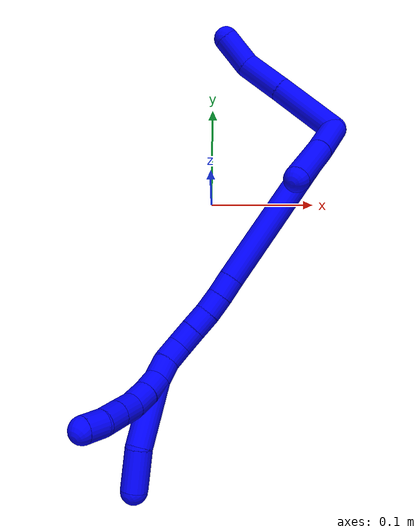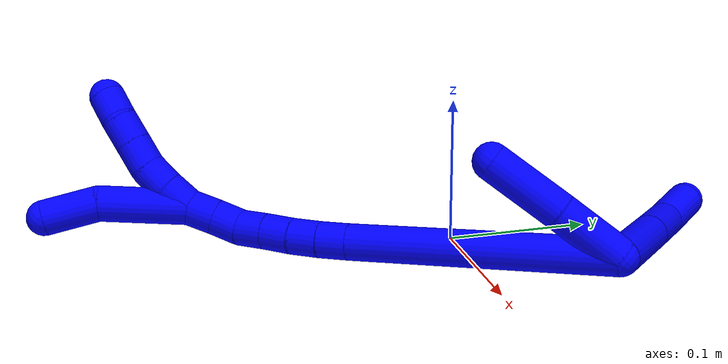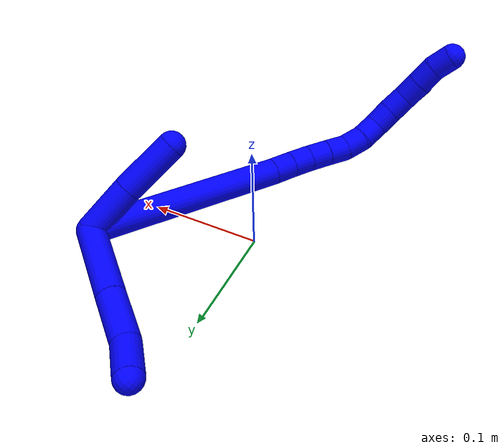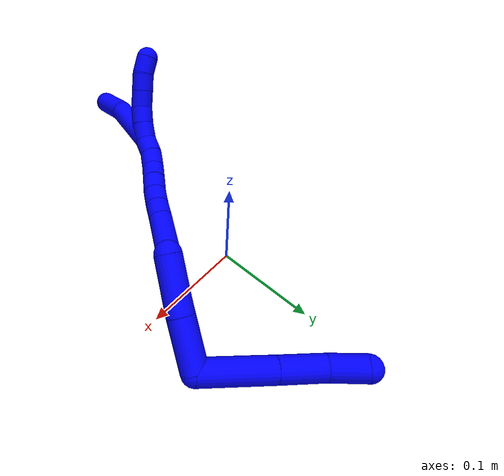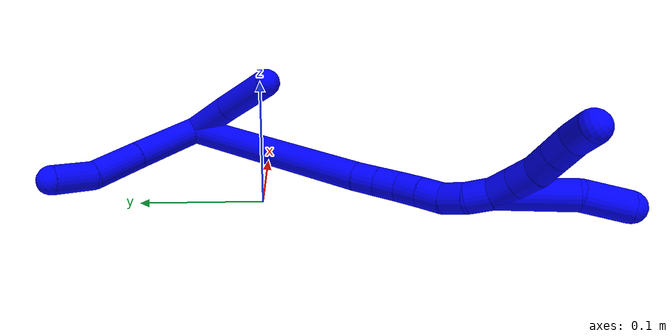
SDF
<sdf version="1.7">
 <world name="default">
  <model name="1">
   <static>0</static>
   <link name="1">
    <collision name="collision-cylinder-e_1_2_8">
     <pose>-0.017512 0.02956 -0.005868 -1.76675 -0.526383 0.634215</pose>
     <geometry><cylinder><radius>0.0125</radius><length>0.069711</length></cylinder></geometry>
     <surface>
      <friction><ode><mu>1.16</mu><mu2>1.16</mu2><slip1>0</slip1><slip2>0</slip2></ode></friction>
      <contact><ode><kp>1e+06</kp><kd>1</kd><max_vel>0</max_vel><min_depth>0.001</min_depth></ode></contact>
     </surface>
    </collision>
    <visual name="visual-cylinder-e_1_2_8">
     <pose>-0.017512 0.02956 -0.005868 -1.76675 -0.526383 0.634215</pose>
     <geometry><cylinder><radius>0.0125</radius><length>0.069711</length></cylinder></geometry>
     <material><ambient>0 0 1 1</ambient></material>
    </visual>
    <collision name="collision-cylinder-e_2_8_9">
     <pose>-0.04655 0.078062 -0.015384 -1.76111 -0.538609 0.64516</pose>
     <geometry><cylinder><radius>0.0125</radius><length>0.044943</length></cylinder></geometry>
     <surface>
      <friction><ode><mu>1.16</mu><mu2>1.16</mu2><slip1>0</slip1><slip2>0</slip2></ode></friction>
      <contact><ode><kp>1e+06</kp><kd>1</kd><max_vel>0</max_vel><min_depth>0.001</min_depth></ode></contact>
     </surface>
    </collision>
    <visual name="visual-cylinder-e_2_8_9">
     <pose>-0.04655 0.078062 -0.015384 -1.76111 -0.538609 0.64516</pose>
     <geometry><cylinder><radius>0.0125</radius><length>0.044943</length></cylinder></geometry>
     <material><ambient>0 0 1 1</ambient></material>
    </visual>
    <collision name="collision-cylinder-e_3_9_6">
     <pose>-0.062065 0.114009 -0.02173 -1.72806 -0.227647 0.266167</pose>
     <geometry><cylinder><radius>0.0125</radius><length>0.035346</length></cylinder></geometry>
     <surface>
      <friction><ode><mu>1.16</mu><mu2>1.16</mu2><slip1>0</slip1><slip2>0</slip2></ode></friction>
      <contact><ode><kp>1e+06</kp><kd>1</kd><max_vel>0</max_vel><min_depth>0.001</min_depth></ode></contact>
     </surface>
    </collision>
    <visual name="visual-cylinder-e_3_9_6">
     <pose>-0.062065 0.114009 -0.02173 -1.72806 -0.227647 0.266167</pose>
     <geometry><cylinder><radius>0.0125</radius><length>0.035346</length></cylinder></geometry>
     <material><ambient>0 0 1 1</ambient></material>
    </visual>
    <collision name="collision-cylinder-e_1_2_10">
     <pose>0.001124 -0.001834 0.023515 0.077856 0.047612 0.001855</pose>
     <geometry><cylinder><radius>0.0125</radius><length>0.047226</length></cylinder></geometry>
     <surface>
      <friction><ode><mu>1.16</mu><mu2>1.16</mu2><slip1>0</slip1><slip2>0</slip2></ode></friction>
      <contact><ode><kp>1e+06</kp><kd>1</kd><max_vel>0</max_vel><min_depth>0.001</min_depth></ode></contact>
     </surface>
    </collision>
    <visual name="visual-cylinder-e_1_2_10">
     <pose>0.001124 -0.001834 0.023515 0.077856 0.047612 0.001855</pose>
     <geometry><cylinder><radius>0.0125</radius><length>0.047226</length></cylinder></geometry>
     <material><ambient>0 0 1 1</ambient></material>
    </visual>
    <collision name="collision-cylinder-e_2_10_5">
     <pose>0.002043 -0.004999 0.073382 0.050445 -0.007772 -0.000196</pose>
     <geometry><cylinder><radius>0.0125</radius><length>0.052774</length></cylinder></geometry>
     <surface>
      <friction><ode><mu>1.16</mu><mu2>1.16</mu2><slip1>0</slip1><slip2>0</slip2></ode></friction>
      <contact><ode><kp>1e+06</kp><kd>1</kd><max_vel>0</max_vel><min_depth>0.001</min_depth></ode></contact>
     </surface>
    </collision>
    <visual name="visual-cylinder-e_2_10_5">
     <pose>0.002043 -0.004999 0.073382 0.050445 -0.007772 -0.000196</pose>
     <geometry><cylinder><radius>0.0125</radius><length>0.052774</length></cylinder></geometry>
     <material><ambient>0 0 1 1</ambient></material>
    </visual>
    <collision name="collision-cylinder-e_1_2_11">
     <pose>-0.048352 -0.028734 0.069934 0.38984 -0.568972 -0.115334</pose>
     <geometry><cylinder><radius>0.0125</radius><length>0.179492</length></cylinder></geometry>
     <surface>
      <friction><ode><mu>1.16</mu><mu2>1.16</mu2><slip1>0</slip1><slip2>0</slip2></ode></friction>
      <contact><ode><kp>1e+06</kp><kd>1</kd><max_vel>0</max_vel><min_depth>0.001</min_depth></ode></contact>
     </surface>
    </collision>
    <visual name="visual-cylinder-e_1_2_11">
     <pose>-0.048352 -0.028734 0.069934 0.38984 -0.568972 -0.115334</pose>
     <geometry><cylinder><radius>0.0125</radius><length>0.179492</length></cylinder></geometry>
     <material><ambient>0 0 1 1</ambient></material>
    </visual>
    <collision name="collision-cylinder-e_2_11_12">
     <pose>-0.101831 -0.06085 0.148062 0.391525 -0.524341 -0.106327</pose>
     <geometry><cylinder><radius>0.0125</radius><length>0.020481</length></cylinder></geometry>
     <surface>
      <friction><ode><mu>1.16</mu><mu2>1.16</mu2><slip1>0</slip1><slip2>0</slip2></ode></friction>
      <contact><ode><kp>1e+06</kp><kd>1</kd><max_vel>0</max_vel><min_depth>0.001</min_depth></ode></contact>
     </surface>
    </collision>
    <visual name="visual-cylinder-e_2_11_12">
     <pose>-0.101831 -0.06085 0.148062 0.391525 -0.524341 -0.106327</pose>
     <geometry><cylinder><radius>0.0125</radius><length>0.020481</length></cylinder></geometry>
     <material><ambient>0 0 1 1</ambient></material>
    </visual>
    <collision name="collision-cylinder-e_3_12_13">
     <pose>-0.112057 -0.067025 0.164397 0.330458 -0.534852 -0.091311</pose>
     <geometry><cylinder><radius>0.0125</radius><length>0.020006</length></cylinder></geometry>
     <surface>
      <friction><ode><mu>1.16</mu><mu2>1.16</mu2><slip1>0</slip1><slip2>0</slip2></ode></friction>
      <contact><ode><kp>1e+06</kp><kd>1</kd><max_vel>0</max_vel><min_depth>0.001</min_depth></ode></contact>
     </surface>
    </collision>
    <visual name="visual-cylinder-e_3_12_13">
     <pose>-0.112057 -0.067025 0.164397 0.330458 -0.534852 -0.091311</pose>
     <geometry><cylinder><radius>0.0125</radius><length>0.020006</length></cylinder></geometry>
     <material><ambient>0 0 1 1</ambient></material>
    </visual>
    <collision name="collision-cylinder-e_4_13_14">
     <pose>-0.12246 -0.071788 0.180788 0.234354 -0.558852 -0.067528</pose>
     <geometry><cylinder><radius>0.0125</radius><length>0.020009</length></cylinder></geometry>
     <surface>
      <friction><ode><mu>1.16</mu><mu2>1.16</mu2><slip1>0</slip1><slip2>0</slip2></ode></friction>
      <contact><ode><kp>1e+06</kp><kd>1</kd><max_vel>0</max_vel><min_depth>0.001</min_depth></ode></contact>
     </surface>
    </collision>
    <visual name="visual-cylinder-e_4_13_14">
     <pose>-0.12246 -0.071788 0.180788 0.234354 -0.558852 -0.067528</pose>
     <geometry><cylinder><radius>0.0125</radius><length>0.020009</length></cylinder></geometry>
     <material><ambient>0 0 1 1</ambient></material>
    </visual>
    <collision name="collision-cylinder-e_5_14_15">
     <pose>-0.133231 -0.075898 0.197134 0.258511 -0.578333 -0.077301</pose>
     <geometry><cylinder><radius>0.0125</radius><length>0.020002</length></cylinder></geometry>
     <surface>
      <friction><ode><mu>1.16</mu><mu2>1.16</mu2><slip1>0</slip1><slip2>0</slip2></ode></friction>
      <contact><ode><kp>1e+06</kp><kd>1</kd><max_vel>0</max_vel><min_depth>0.001</min_depth></ode></contact>
     </surface>
    </collision>
    <visual name="visual-cylinder-e_5_14_15">
     <pose>-0.133231 -0.075898 0.197134 0.258511 -0.578333 -0.077301</pose>
     <geometry><cylinder><radius>0.0125</radius><length>0.020002</length></cylinder></geometry>
     <material><ambient>0 0 1 1</ambient></material>
    </visual>
    <collision name="collision-cylinder-e_6_15_16">
     <pose>-0.14185 -0.079427 0.214624 0.146728 -0.320477 -0.023756</pose>
     <geometry><cylinder><radius>0.0125</radius><length>0.02001</length></cylinder></geometry>
     <surface>
      <friction><ode><mu>1.16</mu><mu2>1.16</mu2><slip1>0</slip1><slip2>0</slip2></ode></friction>
      <contact><ode><kp>1e+06</kp><kd>1</kd><max_vel>0</max_vel><min_depth>0.001</min_depth></ode></contact>
     </surface>
    </collision>
    <visual name="visual-cylinder-e_6_15_16">
     <pose>-0.14185 -0.079427 0.214624 0.146728 -0.320477 -0.023756</pose>
     <geometry><cylinder><radius>0.0125</radius><length>0.02001</length></cylinder></geometry>
     <material><ambient>0 0 1 1</ambient></material>
    </visual>
    <collision name="collision-cylinder-e_7_16_1">
     <pose>-0.146381 -0.083734 0.233482 0.299056 -0.138364 -0.020877</pose>
     <geometry><cylinder><radius>0.0125</radius><length>0.020001</length></cylinder></geometry>
     <surface>
      <friction><ode><mu>1.16</mu><mu2>1.16</mu2><slip1>0</slip1><slip2>0</slip2></ode></friction>
      <contact><ode><kp>1e+06</kp><kd>1</kd><max_vel>0</max_vel><min_depth>0.001</min_depth></ode></contact>
     </surface>
    </collision>
    <visual name="visual-cylinder-e_7_16_1">
     <pose>-0.146381 -0.083734 0.233482 0.299056 -0.138364 -0.020877</pose>
     <geometry><cylinder><radius>0.0125</radius><length>0.020001</length></cylinder></geometry>
     <material><ambient>0 0 1 1</ambient></material>
    </visual>
    <collision name="collision-cylinder-e_1_1_17">
     <pose>-0.155174 -0.104034 0.26753 0.61549 -0.241461 -0.077083</pose>
     <geometry><cylinder><radius>0.0125</radius><length>0.062013</length></cylinder></geometry>
     <surface>
      <friction><ode><mu>1.16</mu><mu2>1.16</mu2><slip1>0</slip1><slip2>0</slip2></ode></friction>
      <contact><ode><kp>1e+06</kp><kd>1</kd><max_vel>0</max_vel><min_depth>0.001</min_depth></ode></contact>
     </surface>
    </collision>
    <visual name="visual-cylinder-e_1_1_17">
     <pose>-0.155174 -0.104034 0.26753 0.61549 -0.241461 -0.077083</pose>
     <geometry><cylinder><radius>0.0125</radius><length>0.062013</length></cylinder></geometry>
     <material><ambient>0 0 1 1</ambient></material>
    </visual>
    <collision name="collision-cylinder-e_2_17_4">
     <pose>-0.16929 -0.135432 0.303039 0.908562 -0.360607 -0.177567</pose>
     <geometry><cylinder><radius>0.0125</radius><length>0.037987</length></cylinder></geometry>
     <surface>
      <friction><ode><mu>1.16</mu><mu2>1.16</mu2><slip1>0</slip1><slip2>0</slip2></ode></friction>
      <contact><ode><kp>1e+06</kp><kd>1</kd><max_vel>0</max_vel><min_depth>0.001</min_depth></ode></contact>
     </surface>
    </collision>
    <visual name="visual-cylinder-e_2_17_4">
     <pose>-0.16929 -0.135432 0.303039 0.908562 -0.360607 -0.177567</pose>
     <geometry><cylinder><radius>0.0125</radius><length>0.037987</length></cylinder></geometry>
     <material><ambient>0 0 1 1</ambient></material>
    </visual>
    <collision name="collision-cylinder-e_1_1_18">
     <pose>-0.147266 -0.086525 0.252935 -0.01274 0.049366 -0.000315</pose>
     <geometry><cylinder><radius>0.0125</radius><length>0.02</length></cylinder></geometry>
     <surface>
      <friction><ode><mu>1.16</mu><mu2>1.16</mu2><slip1>0</slip1><slip2>0</slip2></ode></friction>
      <contact><ode><kp>1e+06</kp><kd>1</kd><max_vel>0</max_vel><min_depth>0.001</min_depth></ode></contact>
     </surface>
    </collision>
    <visual name="visual-cylinder-e_1_1_18">
     <pose>-0.147266 -0.086525 0.252935 -0.01274 0.049366 -0.000315</pose>
     <geometry><cylinder><radius>0.0125</radius><length>0.02</length></cylinder></geometry>
     <material><ambient>0 0 1 1</ambient></material>
    </visual>
    <collision name="collision-cylinder-e_2_18_19">
     <pose>-0.146605 -0.085308 0.272861 -0.109191 0.01681 -0.000919</pose>
     <geometry><cylinder><radius>0.0125</radius><length>0.02</length></cylinder></geometry>
     <surface>
      <friction><ode><mu>1.16</mu><mu2>1.16</mu2><slip1>0</slip1><slip2>0</slip2></ode></friction>
      <contact><ode><kp>1e+06</kp><kd>1</kd><max_vel>0</max_vel><min_depth>0.001</min_depth></ode></contact>
     </surface>
    </collision>
    <visual name="visual-cylinder-e_2_18_19">
     <pose>-0.146605 -0.085308 0.272861 -0.109191 0.01681 -0.000919</pose>
     <geometry><cylinder><radius>0.0125</radius><length>0.02</length></cylinder></geometry>
     <material><ambient>0 0 1 1</ambient></material>
    </visual>
    <collision name="collision-cylinder-e_3_19_20">
     <pose>-0.144994 -0.081191 0.292221 -0.310921 0.144737 -0.022723</pose>
     <geometry><cylinder><radius>0.0125</radius><length>0.02</length></cylinder></geometry>
     <surface>
      <friction><ode><mu>1.16</mu><mu2>1.16</mu2><slip1>0</slip1><slip2>0</slip2></ode></friction>
      <contact><ode><kp>1e+06</kp><kd>1</kd><max_vel>0</max_vel><min_depth>0.001</min_depth></ode></contact>
     </surface>
    </collision>
    <visual name="visual-cylinder-e_3_19_20">
     <pose>-0.144994 -0.081191 0.292221 -0.310921 0.144737 -0.022723</pose>
     <geometry><cylinder><radius>0.0125</radius><length>0.02</length></cylinder></geometry>
     <material><ambient>0 0 1 1</ambient></material>
    </visual>
    <collision name="collision-cylinder-e_4_20_21">
     <pose>-0.142065 -0.075203 0.311077 -0.304064 0.149265 -0.022911</pose>
     <geometry><cylinder><radius>0.0125</radius><length>0.02</length></cylinder></geometry>
     <surface>
      <friction><ode><mu>1.16</mu><mu2>1.16</mu2><slip1>0</slip1><slip2>0</slip2></ode></friction>
      <contact><ode><kp>1e+06</kp><kd>1</kd><max_vel>0</max_vel><min_depth>0.001</min_depth></ode></contact>
     </surface>
    </collision>
    <visual name="visual-cylinder-e_4_20_21">
     <pose>-0.142065 -0.075203 0.311077 -0.304064 0.149265 -0.022911</pose>
     <geometry><cylinder><radius>0.0125</radius><length>0.02</length></cylinder></geometry>
     <material><ambient>0 0 1 1</ambient></material>
    </visual>
    <collision name="collision-cylinder-e_5_21_3">
     <pose>-0.141033 -0.068044 0.329577 -0.433665 -0.04552 0.01003</pose>
     <geometry><cylinder><radius>0.0125</radius><length>0.02</length></cylinder></geometry>
     <surface>
      <friction><ode><mu>1.16</mu><mu2>1.16</mu2><slip1>0</slip1><slip2>0</slip2></ode></friction>
      <contact><ode><kp>1e+06</kp><kd>1</kd><max_vel>0</max_vel><min_depth>0.001</min_depth></ode></contact>
     </surface>
    </collision>
    <visual name="visual-cylinder-e_5_21_3">
     <pose>-0.141033 -0.068044 0.329577 -0.433665 -0.04552 0.01003</pose>
     <geometry><cylinder><radius>0.0125</radius><length>0.02</length></cylinder></geometry>
     <material><ambient>0 0 1 1</ambient></material>
    </visual>
    <collision name="collision-sphere-3">
     <pose>-0.141488 -0.063847 0.338642 0 -0 0</pose>
     <geometry><sphere><radius>0.0125</radius></sphere></geometry>
     <surface>
      <friction><ode><mu>1.16</mu><mu2>1.16</mu2><slip1>0</slip1><slip2>0</slip2></ode></friction>
      <contact><ode><kp>1e+06</kp><kd>1</kd><max_vel>0</max_vel><min_depth>0.001</min_depth></ode></contact>
     </surface>
    </collision>
    <visual name="visual-sphere-3">
     <pose>-0.141488 -0.063847 0.338642 0 -0 0</pose>
     <geometry><sphere><radius>0.0125</radius></sphere></geometry>
     <material><ambient>0 0 1 1</ambient></material>
    </visual>
    <collision name="collision-sphere-21">
     <pose>-0.140578 -0.072242 0.320512 0 -0 0</pose>
     <geometry><sphere><radius>0.0125</radius></sphere></geometry>
     <surface>
      <friction><ode><mu>1.16</mu><mu2>1.16</mu2><slip1>0</slip1><slip2>0</slip2></ode></friction>
      <contact><ode><kp>1e+06</kp><kd>1</kd><max_vel>0</max_vel><min_depth>0.001</min_depth></ode></contact>
     </surface>
    </collision>
    <visual name="visual-sphere-21">
     <pose>-0.140578 -0.072242 0.320512 0 -0 0</pose>
     <geometry><sphere><radius>0.0125</radius></sphere></geometry>
     <material><ambient>0 0 1 1</ambient></material>
    </visual>
    <collision name="collision-sphere-20">
     <pose>-0.143552 -0.078164 0.301642 0 -0 0</pose>
     <geometry><sphere><radius>0.0125</radius></sphere></geometry>
     <surface>
      <friction><ode><mu>1.16</mu><mu2>1.16</mu2><slip1>0</slip1><slip2>0</slip2></ode></friction>
      <contact><ode><kp>1e+06</kp><kd>1</kd><max_vel>0</max_vel><min_depth>0.001</min_depth></ode></contact>
     </surface>
    </collision>
    <visual name="visual-sphere-20">
     <pose>-0.143552 -0.078164 0.301642 0 -0 0</pose>
     <geometry><sphere><radius>0.0125</radius></sphere></geometry>
     <material><ambient>0 0 1 1</ambient></material>
    </visual>
    <collision name="collision-sphere-19">
     <pose>-0.146437 -0.084218 0.2828 0 -0 0</pose>
     <geometry><sphere><radius>0.0125</radius></sphere></geometry>
     <surface>
      <friction><ode><mu>1.16</mu><mu2>1.16</mu2><slip1>0</slip1><slip2>0</slip2></ode></friction>
      <contact><ode><kp>1e+06</kp><kd>1</kd><max_vel>0</max_vel><min_depth>0.001</min_depth></ode></contact>
     </surface>
    </collision>
    <visual name="visual-sphere-19">
     <pose>-0.146437 -0.084218 0.2828 0 -0 0</pose>
     <geometry><sphere><radius>0.0125</radius></sphere></geometry>
     <material><ambient>0 0 1 1</ambient></material>
    </visual>
    <collision name="collision-sphere-5">
     <pose>0.001837 -0.00633 0.099735 0 -0 0</pose>
     <geometry><sphere><radius>0.0125</radius></sphere></geometry>
     <surface>
      <friction><ode><mu>1.16</mu><mu2>1.16</mu2><slip1>0</slip1><slip2>0</slip2></ode></friction>
      <contact><ode><kp>1e+06</kp><kd>1</kd><max_vel>0</max_vel><min_depth>0.001</min_depth></ode></contact>
     </surface>
    </collision>
    <visual name="visual-sphere-5">
     <pose>0.001837 -0.00633 0.099735 0 -0 0</pose>
     <geometry><sphere><radius>0.0125</radius></sphere></geometry>
     <material><ambient>0 0 1 1</ambient></material>
    </visual>
    <collision name="collision-sphere-10">
     <pose>0.002248 -0.003669 0.047029 0 -0 0</pose>
     <geometry><sphere><radius>0.0125</radius></sphere></geometry>
     <surface>
      <friction><ode><mu>1.16</mu><mu2>1.16</mu2><slip1>0</slip1><slip2>0</slip2></ode></friction>
      <contact><ode><kp>1e+06</kp><kd>1</kd><max_vel>0</max_vel><min_depth>0.001</min_depth></ode></contact>
     </surface>
    </collision>
    <visual name="visual-sphere-10">
     <pose>0.002248 -0.003669 0.047029 0 -0 0</pose>
     <geometry><sphere><radius>0.0125</radius></sphere></geometry>
     <material><ambient>0 0 1 1</ambient></material>
    </visual>
    <collision name="collision-sphere-6">
     <pose>-0.066054 0.131013 -0.024426 0 -0 0</pose>
     <geometry><sphere><radius>0.0125</radius></sphere></geometry>
     <surface>
      <friction><ode><mu>1.16</mu><mu2>1.16</mu2><slip1>0</slip1><slip2>0</slip2></ode></friction>
      <contact><ode><kp>1e+06</kp><kd>1</kd><max_vel>0</max_vel><min_depth>0.001</min_depth></ode></contact>
     </surface>
    </collision>
    <visual name="visual-sphere-6">
     <pose>-0.066054 0.131013 -0.024426 0 -0 0</pose>
     <geometry><sphere><radius>0.0125</radius></sphere></geometry>
     <material><ambient>0 0 1 1</ambient></material>
    </visual>
    <collision name="collision-sphere-9">
     <pose>-0.058077 0.097004 -0.019033 0 -0 0</pose>
     <geometry><sphere><radius>0.0125</radius></sphere></geometry>
     <surface>
      <friction><ode><mu>1.16</mu><mu2>1.16</mu2><slip1>0</slip1><slip2>0</slip2></ode></friction>
      <contact><ode><kp>1e+06</kp><kd>1</kd><max_vel>0</max_vel><min_depth>0.001</min_depth></ode></contact>
     </surface>
    </collision>
    <visual name="visual-sphere-9">
     <pose>-0.058077 0.097004 -0.019033 0 -0 0</pose>
     <geometry><sphere><radius>0.0125</radius></sphere></geometry>
     <material><ambient>0 0 1 1</ambient></material>
    </visual>
    <collision name="collision-sphere-2">
     <geometry><sphere><radius>0.0125</radius></sphere></geometry>
     <surface>
      <friction><ode><mu>1.16</mu><mu2>1.16</mu2><slip1>0</slip1><slip2>0</slip2></ode></friction>
      <contact><ode><kp>1e+06</kp><kd>1</kd><max_vel>0</max_vel><min_depth>0.001</min_depth></ode></contact>
     </surface>
    </collision>
    <visual name="visual-sphere-2">
     <geometry><sphere><radius>0.0125</radius></sphere></geometry>
     <material><ambient>0 0 1 1</ambient></material>
    </visual>
    <collision name="collision-sphere-8">
     <pose>-0.035023 0.05912 -0.011735 0 -0 0</pose>
     <geometry><sphere><radius>0.0125</radius></sphere></geometry>
     <surface>
      <friction><ode><mu>1.16</mu><mu2>1.16</mu2><slip1>0</slip1><slip2>0</slip2></ode></friction>
      <contact><ode><kp>1e+06</kp><kd>1</kd><max_vel>0</max_vel><min_depth>0.001</min_depth></ode></contact>
     </surface>
    </collision>
    <visual name="visual-sphere-8">
     <pose>-0.035023 0.05912 -0.011735 0 -0 0</pose>
     <geometry><sphere><radius>0.0125</radius></sphere></geometry>
     <material><ambient>0 0 1 1</ambient></material>
    </visual>
    <collision name="collision-sphere-11">
     <pose>-0.096704 -0.057468 0.139869 0 -0 0</pose>
     <geometry><sphere><radius>0.0125</radius></sphere></geometry>
     <surface>
      <friction><ode><mu>1.16</mu><mu2>1.16</mu2><slip1>0</slip1><slip2>0</slip2></ode></friction>
      <contact><ode><kp>1e+06</kp><kd>1</kd><max_vel>0</max_vel><min_depth>0.001</min_depth></ode></contact>
     </surface>
    </collision>
    <visual name="visual-sphere-11">
     <pose>-0.096704 -0.057468 0.139869 0 -0 0</pose>
     <geometry><sphere><radius>0.0125</radius></sphere></geometry>
     <material><ambient>0 0 1 1</ambient></material>
    </visual>
    <collision name="collision-sphere-12">
     <pose>-0.106958 -0.064233 0.156256 0 -0 0</pose>
     <geometry><sphere><radius>0.0125</radius></sphere></geometry>
     <surface>
      <friction><ode><mu>1.16</mu><mu2>1.16</mu2><slip1>0</slip1><slip2>0</slip2></ode></friction>
      <contact><ode><kp>1e+06</kp><kd>1</kd><max_vel>0</max_vel><min_depth>0.001</min_depth></ode></contact>
     </surface>
    </collision>
    <visual name="visual-sphere-12">
     <pose>-0.106958 -0.064233 0.156256 0 -0 0</pose>
     <geometry><sphere><radius>0.0125</radius></sphere></geometry>
     <material><ambient>0 0 1 1</ambient></material>
    </visual>
    <collision name="collision-sphere-13">
     <pose>-0.117155 -0.069818 0.172537 0 -0 0</pose>
     <geometry><sphere><radius>0.0125</radius></sphere></geometry>
     <surface>
      <friction><ode><mu>1.16</mu><mu2>1.16</mu2><slip1>0</slip1><slip2>0</slip2></ode></friction>
      <contact><ode><kp>1e+06</kp><kd>1</kd><max_vel>0</max_vel><min_depth>0.001</min_depth></ode></contact>
     </surface>
    </collision>
    <visual name="visual-sphere-13">
     <pose>-0.117155 -0.069818 0.172537 0 -0 0</pose>
     <geometry><sphere><radius>0.0125</radius></sphere></geometry>
     <material><ambient>0 0 1 1</ambient></material>
    </visual>
    <collision name="collision-sphere-14">
     <pose>-0.127764 -0.073757 0.189038 0 -0 0</pose>
     <geometry><sphere><radius>0.0125</radius></sphere></geometry>
     <surface>
      <friction><ode><mu>1.16</mu><mu2>1.16</mu2><slip1>0</slip1><slip2>0</slip2></ode></friction>
      <contact><ode><kp>1e+06</kp><kd>1</kd><max_vel>0</max_vel><min_depth>0.001</min_depth></ode></contact>
     </surface>
    </collision>
    <visual name="visual-sphere-14">
     <pose>-0.127764 -0.073757 0.189038 0 -0 0</pose>
     <geometry><sphere><radius>0.0125</radius></sphere></geometry>
     <material><ambient>0 0 1 1</ambient></material>
    </visual>
    <collision name="collision-sphere-15">
     <pose>-0.138698 -0.078039 0.205231 0 -0 0</pose>
     <geometry><sphere><radius>0.0125</radius></sphere></geometry>
     <surface>
      <friction><ode><mu>1.16</mu><mu2>1.16</mu2><slip1>0</slip1><slip2>0</slip2></ode></friction>
      <contact><ode><kp>1e+06</kp><kd>1</kd><max_vel>0</max_vel><min_depth>0.001</min_depth></ode></contact>
     </surface>
    </collision>
    <visual name="visual-sphere-15">
     <pose>-0.138698 -0.078039 0.205231 0 -0 0</pose>
     <geometry><sphere><radius>0.0125</radius></sphere></geometry>
     <material><ambient>0 0 1 1</ambient></material>
    </visual>
    <collision name="collision-sphere-16">
     <pose>-0.145001 -0.080816 0.224017 0 -0 0</pose>
     <geometry><sphere><radius>0.0125</radius></sphere></geometry>
     <surface>
      <friction><ode><mu>1.16</mu><mu2>1.16</mu2><slip1>0</slip1><slip2>0</slip2></ode></friction>
      <contact><ode><kp>1e+06</kp><kd>1</kd><max_vel>0</max_vel><min_depth>0.001</min_depth></ode></contact>
     </surface>
    </collision>
    <visual name="visual-sphere-16">
     <pose>-0.145001 -0.080816 0.224017 0 -0 0</pose>
     <geometry><sphere><radius>0.0125</radius></sphere></geometry>
     <material><ambient>0 0 1 1</ambient></material>
    </visual>
    <collision name="collision-sphere-1">
     <pose>-0.14776 -0.086652 0.242948 0 -0 0</pose>
     <geometry><sphere><radius>0.0125</radius></sphere></geometry>
     <surface>
      <friction><ode><mu>1.16</mu><mu2>1.16</mu2><slip1>0</slip1><slip2>0</slip2></ode></friction>
      <contact><ode><kp>1e+06</kp><kd>1</kd><max_vel>0</max_vel><min_depth>0.001</min_depth></ode></contact>
     </surface>
    </collision>
    <visual name="visual-sphere-1">
     <pose>-0.14776 -0.086652 0.242948 0 -0 0</pose>
     <geometry><sphere><radius>0.0125</radius></sphere></geometry>
     <material><ambient>0 0 1 1</ambient></material>
    </visual>
    <collision name="collision-sphere-18">
     <pose>-0.146773 -0.086397 0.262922 0 -0 0</pose>
     <geometry><sphere><radius>0.0125</radius></sphere></geometry>
     <surface>
      <friction><ode><mu>1.16</mu><mu2>1.16</mu2><slip1>0</slip1><slip2>0</slip2></ode></friction>
      <contact><ode><kp>1e+06</kp><kd>1</kd><max_vel>0</max_vel><min_depth>0.001</min_depth></ode></contact>
     </surface>
    </collision>
    <visual name="visual-sphere-18">
     <pose>-0.146773 -0.086397 0.262922 0 -0 0</pose>
     <geometry><sphere><radius>0.0125</radius></sphere></geometry>
     <material><ambient>0 0 1 1</ambient></material>
    </visual>
    <collision name="collision-sphere-17">
     <pose>-0.162588 -0.121417 0.292112 0 -0 0</pose>
     <geometry><sphere><radius>0.0125</radius></sphere></geometry>
     <surface>
      <friction><ode><mu>1.16</mu><mu2>1.16</mu2><slip1>0</slip1><slip2>0</slip2></ode></friction>
      <contact><ode><kp>1e+06</kp><kd>1</kd><max_vel>0</max_vel><min_depth>0.001</min_depth></ode></contact>
     </surface>
    </collision>
    <visual name="visual-sphere-17">
     <pose>-0.162588 -0.121417 0.292112 0 -0 0</pose>
     <geometry><sphere><radius>0.0125</radius></sphere></geometry>
     <material><ambient>0 0 1 1</ambient></material>
    </visual>
    <collision name="collision-sphere-4">
     <pose>-0.175992 -0.149448 0.313967 0 -0 0</pose>
     <geometry><sphere><radius>0.0125</radius></sphere></geometry>
     <surface>
      <friction><ode><mu>1.16</mu><mu2>1.16</mu2><slip1>0</slip1><slip2>0</slip2></ode></friction>
      <contact><ode><kp>1e+06</kp><kd>1</kd><max_vel>0</max_vel><min_depth>0.001</min_depth></ode></contact>
     </surface>
    </collision>
    <visual name="visual-sphere-4">
     <pose>-0.175992 -0.149448 0.313967 0 -0 0</pose>
     <geometry><sphere><radius>0.0125</radius></sphere></geometry>
     <material><ambient>0 0 1 1</ambient></material>
    </visual>
    <inertial>
     <pose>-0.079635 -0.032315 0.127718 0 -0 0</pose>
     <mass>0.75</mass>
     <inertia><ixx>0.000462</ixx><ixy>0</ixy><ixz>0</ixz><iyy>0.0005</iyy><iyz>0</iyz><izz>0.00047</izz></inertia>
    </inertial>
   </link>
   <pose>0.11952 0.070412 0.025995 0.604452 -0.80466 0.190619</pose>
  </model>
 </world>
</sdf>
